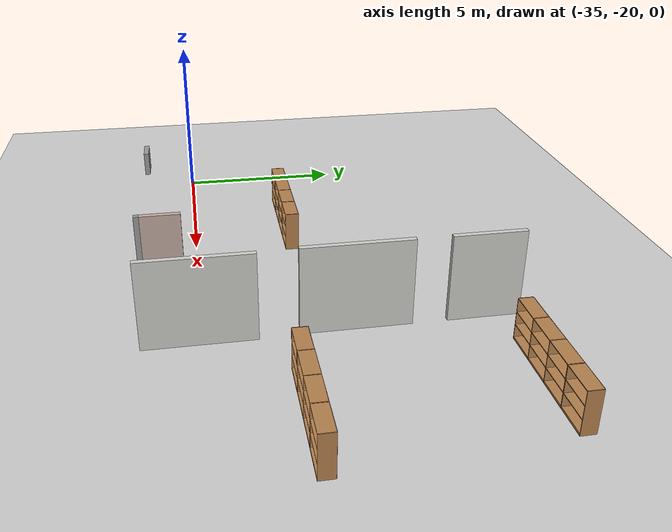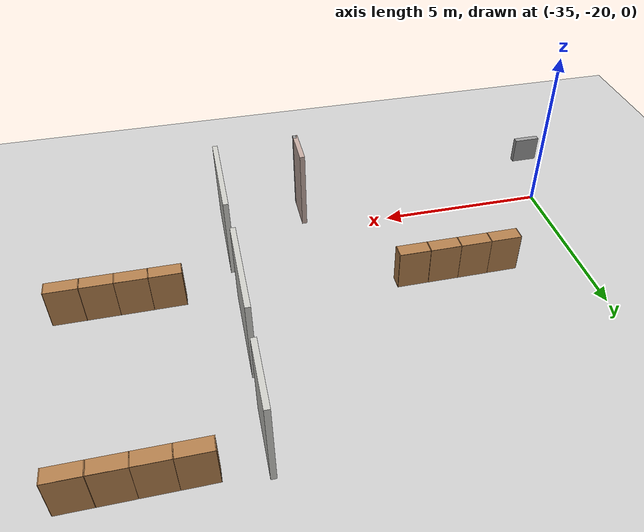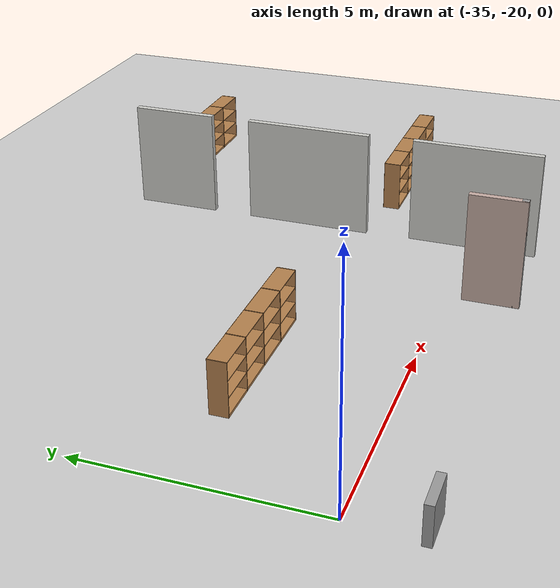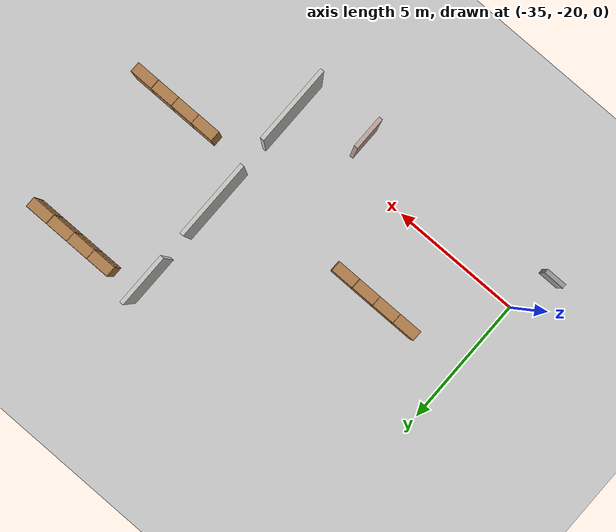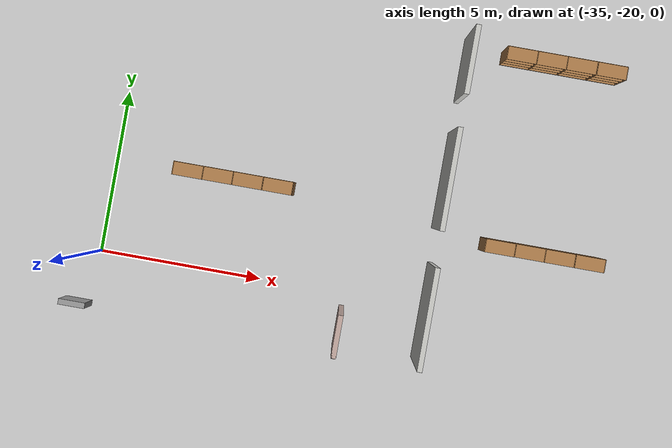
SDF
<sdf version="1.6">
 <world name="default">
  <model name="ground_plane">
   <static>1</static>
   <link name="link">
    <collision name="collision">
     <geometry><plane><normal>0 0 1</normal><size>100 100</size></plane></geometry>
     <surface><friction><ode><mu>100</mu><mu2>50</mu2></ode></friction></surface>
    </collision>
    <visual name="visual">
     <cast_shadows>0</cast_shadows>
     <geometry><plane><normal>0 0 1</normal><size>100 100</size></plane></geometry>
     <material>
      <script><uri>file://media/materials/scripts/gazebo.material</uri><name>Gazebo/Grey</name></script>
     </material>
    </visual>
   </link>
  </model>
  <model name="floor">
   <link name="Wall_27">
    <pose>-28.6403 -19.7123 0 0 0 -1.5708</pose>
    <visual name="Wall_27_Visual">
     <pose>0 0 1.25 0 -0 0</pose>
     <geometry><box><size>1.25 0.15 2.5</size></box></geometry>
     <material>
      <script><uri>file://media/materials/scripts/gazebo.material</uri><name>Gazebo/Grey</name></script>
      <ambient>0.760784 0.662745 0.627451 1</ambient>
     </material>
     <meta><layer>0</layer></meta>
    </visual>
    <collision name="Wall_27_Collision">
     <pose>0 0 1.25 0 -0 0</pose>
     <geometry><box><size>1.25 0.15 2.5</size></box></geometry>
     <surface>
      <friction>
       <ode><mu>1</mu><mu2>1</mu2><fdir1>0 0 0</fdir1><slip1>0</slip1><slip2>0</slip2></ode>
       <torsional>
        <coefficient>1</coefficient>
        <patch_radius>0</patch_radius>
        <surface_radius>0</surface_radius>
        <use_patch_radius>1</use_patch_radius>
        <ode><slip>0</slip></ode>
       </torsional>
      </friction>
      <bounce><restitution_coefficient>0</restitution_coefficient><threshold>1e+06</threshold></bounce>
      <contact>
       <collide_without_contact>0</collide_without_contact>
       <collide_without_contact_bitmask>1</collide_without_contact_bitmask>
       <collide_bitmask>1</collide_bitmask>
       <ode>
        <soft_cfm>0</soft_cfm>
        <soft_erp>0.2</soft_erp>
        <kp>1e+13</kp>
        <kd>1</kd>
        <max_vel>0.01</max_vel>
        <min_depth>0</min_depth>
       </ode>
       <bullet>
        <split_impulse>1</split_impulse>
        <split_impulse_penetration_threshold>-0.01</split_impulse_penetration_threshold>
        <soft_cfm>0</soft_cfm>
        <soft_erp>0.2</soft_erp>
        <kp>1e+13</kp>
        <kd>1</kd>
       </bullet>
      </contact>
     </surface>
    </collision>
   </link>
   <link name="Wall_28">
    <pose>-28.6403 -20.2623 0 0 -0 0</pose>
    <visual name="Wall_28_Visual">
     <pose>0 0 1.25 0 -0 0</pose>
     <geometry><box><size>0.15 0.15 2.5</size></box></geometry>
     <material>
      <script><uri>file://media/materials/scripts/gazebo.material</uri><name>Gazebo/Grey</name></script>
      <ambient>1 1 1 1</ambient>
     </material>
     <meta><layer>0</layer></meta>
    </visual>
    <collision name="Wall_28_Collision">
     <pose>0 0 1.25 0 -0 0</pose>
     <geometry><box><size>0.15 0.15 2.5</size></box></geometry>
     <surface>
      <friction>
       <ode><mu>1</mu><mu2>1</mu2><fdir1>0 0 0</fdir1><slip1>0</slip1><slip2>0</slip2></ode>
       <torsional>
        <coefficient>1</coefficient>
        <patch_radius>0</patch_radius>
        <surface_radius>0</surface_radius>
        <use_patch_radius>1</use_patch_radius>
        <ode><slip>0</slip></ode>
       </torsional>
      </friction>
      <bounce><restitution_coefficient>0</restitution_coefficient><threshold>1e+06</threshold></bounce>
      <contact>
       <collide_without_contact>0</collide_without_contact>
       <collide_without_contact_bitmask>1</collide_without_contact_bitmask>
       <collide_bitmask>1</collide_bitmask>
       <ode>
        <soft_cfm>0</soft_cfm>
        <soft_erp>0.2</soft_erp>
        <kp>1e+13</kp>
        <kd>1</kd>
        <max_vel>0.01</max_vel>
        <min_depth>0</min_depth>
       </ode>
       <bullet>
        <split_impulse>1</split_impulse>
        <split_impulse_penetration_threshold>-0.01</split_impulse_penetration_threshold>
        <soft_cfm>0</soft_cfm>
        <soft_erp>0.2</soft_erp>
        <kp>1e+13</kp>
        <kd>1</kd>
       </bullet>
      </contact>
     </surface>
    </collision>
   </link>
   <link name="Wall_51">
    <pose>-26.2339 -11.2873 0 0 0 -1.5708</pose>
    <visual name="Wall_51_Visual">
     <pose>0 0 1.25 0 -0 0</pose>
     <geometry><box><size>2 0.15 2.5</size></box></geometry>
     <material>
      <script><uri>file://media/materials/scripts/gazebo.material</uri><name>Gazebo/CeilingTiled</name></script>
      <ambient>0.760784 0.662745 0.627451 1</ambient>
     </material>
     <meta><layer>0</layer></meta>
    </visual>
    <collision name="Wall_51_Collision">
     <pose>0 0 1.25 0 -0 0</pose>
     <geometry><box><size>2 0.15 2.5</size></box></geometry>
     <surface>
      <friction>
       <ode><mu>1</mu><mu2>1</mu2><fdir1>0 0 0</fdir1><slip1>0</slip1><slip2>0</slip2></ode>
       <torsional>
        <coefficient>1</coefficient>
        <patch_radius>0</patch_radius>
        <surface_radius>0</surface_radius>
        <use_patch_radius>1</use_patch_radius>
        <ode><slip>0</slip></ode>
       </torsional>
      </friction>
      <bounce><restitution_coefficient>0</restitution_coefficient><threshold>1e+06</threshold></bounce>
      <contact>
       <collide_without_contact>0</collide_without_contact>
       <collide_without_contact_bitmask>1</collide_without_contact_bitmask>
       <collide_bitmask>1</collide_bitmask>
       <ode>
        <soft_cfm>0</soft_cfm>
        <soft_erp>0.2</soft_erp>
        <kp>1e+13</kp>
        <kd>1</kd>
        <max_vel>0.01</max_vel>
        <min_depth>0</min_depth>
       </ode>
       <bullet>
        <split_impulse>1</split_impulse>
        <split_impulse_penetration_threshold>-0.01</split_impulse_penetration_threshold>
        <soft_cfm>0</soft_cfm>
        <soft_erp>0.2</soft_erp>
        <kp>1e+13</kp>
        <kd>1</kd>
       </bullet>
      </contact>
     </surface>
    </collision>
   </link>
   <link name="Wall_53">
    <pose>-26.2339 -14.7373 0 0 0 -1.5708</pose>
    <visual name="Wall_53_Visual">
     <pose>0 0 1.25 0 -0 0</pose>
     <geometry><box><size>3 0.15 2.5</size></box></geometry>
     <material>
      <script><uri>file://media/materials/scripts/gazebo.material</uri><name>Gazebo/CeilingTiled</name></script>
      <ambient>0.760784 0.662745 0.627451 1</ambient>
     </material>
     <meta><layer>0</layer></meta>
    </visual>
    <collision name="Wall_53_Collision">
     <pose>0 0 1.25 0 -0 0</pose>
     <geometry><box><size>3 0.15 2.5</size></box></geometry>
     <surface>
      <friction>
       <ode><mu>1</mu><mu2>1</mu2><fdir1>0 0 0</fdir1><slip1>0</slip1><slip2>0</slip2></ode>
       <torsional>
        <coefficient>1</coefficient>
        <patch_radius>0</patch_radius>
        <surface_radius>0</surface_radius>
        <use_patch_radius>1</use_patch_radius>
        <ode><slip>0</slip></ode>
       </torsional>
      </friction>
      <bounce><restitution_coefficient>0</restitution_coefficient><threshold>1e+06</threshold></bounce>
      <contact>
       <collide_without_contact>0</collide_without_contact>
       <collide_without_contact_bitmask>1</collide_without_contact_bitmask>
       <collide_bitmask>1</collide_bitmask>
       <ode>
        <soft_cfm>0</soft_cfm>
        <soft_erp>0.2</soft_erp>
        <kp>1e+13</kp>
        <kd>1</kd>
        <max_vel>0.01</max_vel>
        <min_depth>0</min_depth>
       </ode>
       <bullet>
        <split_impulse>1</split_impulse>
        <split_impulse_penetration_threshold>-0.01</split_impulse_penetration_threshold>
        <soft_cfm>0</soft_cfm>
        <soft_erp>0.2</soft_erp>
        <kp>1e+13</kp>
        <kd>1</kd>
       </bullet>
      </contact>
     </surface>
    </collision>
   </link>
   <link name="Wall_56">
    <pose>-26.1672 -18.784 0 0 0 -1.5708</pose>
    <visual name="Wall_56_Visual">
     <pose>0 0 1.25 0 -0 0</pose>
     <geometry><box><size>3 0.15 2.5</size></box></geometry>
     <material>
      <script><uri>file://media/materials/scripts/gazebo.material</uri><name>Gazebo/CeilingTiled</name></script>
      <ambient>0.760784 0.662745 0.627451 1</ambient>
     </material>
     <meta><layer>0</layer></meta>
    </visual>
    <collision name="Wall_56_Collision">
     <pose>0 0 1.25 0 -0 0</pose>
     <geometry><box><size>3 0.15 2.5</size></box></geometry>
     <surface>
      <friction>
       <ode><mu>1</mu><mu2>1</mu2><fdir1>0 0 0</fdir1><slip1>0</slip1><slip2>0</slip2></ode>
       <torsional>
        <coefficient>1</coefficient>
        <patch_radius>0</patch_radius>
        <surface_radius>0</surface_radius>
        <use_patch_radius>1</use_patch_radius>
        <ode><slip>0</slip></ode>
       </torsional>
      </friction>
      <bounce><restitution_coefficient>0</restitution_coefficient><threshold>1e+06</threshold></bounce>
      <contact>
       <collide_without_contact>0</collide_without_contact>
       <collide_without_contact_bitmask>1</collide_without_contact_bitmask>
       <collide_bitmask>1</collide_bitmask>
       <ode>
        <soft_cfm>0</soft_cfm>
        <soft_erp>0.2</soft_erp>
        <kp>1e+13</kp>
        <kd>1</kd>
        <max_vel>0.01</max_vel>
        <min_depth>0</min_depth>
       </ode>
       <bullet>
        <split_impulse>1</split_impulse>
        <split_impulse_penetration_threshold>-0.01</split_impulse_penetration_threshold>
        <soft_cfm>0</soft_cfm>
        <soft_erp>0.2</soft_erp>
        <kp>1e+13</kp>
        <kd>1</kd>
       </bullet>
      </contact>
     </surface>
    </collision>
   </link>
   <link name="Window_0">
    <pose>-36.55 -20.3 0.5 0 -0 0</pose>
    <visual name="Window_0_Visual">
     <pose>0 0 0.4 0 -0 0</pose>
     <geometry><box><size>0.8 0.17 0.8</size></box></geometry>
     <material>
      <script><uri>file://media/materials/scripts/gazebo.material</uri><name>Gazebo/Grey</name></script>
     </material>
    </visual>
    <collision name="Window_0_Collision">
     <pose>0 0 0.4 0 -0 0</pose>
     <geometry><box><size>0.8 0.17 0.8</size></box></geometry>
     <surface>
      <friction>
       <ode><mu>1</mu><mu2>1</mu2><fdir1>0 0 0</fdir1><slip1>0</slip1><slip2>0</slip2></ode>
       <torsional>
        <coefficient>1</coefficient>
        <patch_radius>0</patch_radius>
        <surface_radius>0</surface_radius>
        <use_patch_radius>1</use_patch_radius>
        <ode><slip>0</slip></ode>
       </torsional>
      </friction>
      <bounce><restitution_coefficient>0</restitution_coefficient><threshold>1e+06</threshold></bounce>
      <contact>
       <collide_without_contact>0</collide_without_contact>
       <collide_without_contact_bitmask>1</collide_without_contact_bitmask>
       <collide_bitmask>1</collide_bitmask>
       <ode>
        <soft_cfm>0</soft_cfm>
        <soft_erp>0.2</soft_erp>
        <kp>1e+13</kp>
        <kd>1</kd>
        <max_vel>0.01</max_vel>
        <min_depth>0</min_depth>
       </ode>
       <bullet>
        <split_impulse>1</split_impulse>
        <split_impulse_penetration_threshold>-0.01</split_impulse_penetration_threshold>
        <soft_cfm>0</soft_cfm>
        <soft_erp>0.2</soft_erp>
        <kp>1e+13</kp>
        <kd>1</kd>
       </bullet>
      </contact>
     </surface>
    </collision>
   </link>
   <model name="Bookself-4">
    <model name="Bookself-3">
     <model name="bookshelf_0">
      <static>1</static>
      <link name="link">
       <inertial><mass>1</mass></inertial>
       <collision name="back">
        <pose>0 0.005 0.6 0 -0 0</pose>
        <geometry><box><size>0.9 0.01 1.2</size></box></geometry>
       </collision>
       <visual name="visual1">
        <pose>0 0.005 0.6 0 -0 0</pose>
        <geometry><box><size>0.9 0.01 1.2</size></box></geometry>
        <material>
         <script><uri>file://media/materials/scripts/gazebo.material</uri><name>Gazebo/Wood</name></script>
        </material>
       </visual>
       <collision name="left_side">
        <pose>0.45 -0.195 0.6 0 -0 0</pose>
        <geometry><box><size>0.02 0.4 1.2</size></box></geometry>
       </collision>
       <visual name="visual2">
        <pose>0.45 -0.195 0.6 0 -0 0</pose>
        <geometry><box><size>0.02 0.4 1.2</size></box></geometry>
        <material>
         <script><uri>file://media/materials/scripts/gazebo.material</uri><name>Gazebo/Wood</name></script>
        </material>
       </visual>
       <collision name="right_side">
        <pose>-0.45 -0.195 0.6 0 -0 0</pose>
        <geometry><box><size>0.02 0.4 1.2</size></box></geometry>
       </collision>
       <visual name="visual3">
        <pose>-0.45 -0.195 0.6 0 -0 0</pose>
        <geometry><box><size>0.02 0.4 1.2</size></box></geometry>
        <material>
         <script><uri>file://media/materials/scripts/gazebo.material</uri><name>Gazebo/Wood</name></script>
        </material>
       </visual>
       <collision name="bottom">
        <pose>0 -0.195 0.03 0 -0 0</pose>
        <geometry><box><size>0.88 0.4 0.06</size></box></geometry>
       </collision>
       <visual name="visual4">
        <pose>0 -0.195 0.03 0 -0 0</pose>
        <geometry><box><size>0.88 0.4 0.06</size></box></geometry>
        <material>
         <script><uri>file://media/materials/scripts/gazebo.material</uri><name>Gazebo/Wood</name></script>
        </material>
       </visual>
       <collision name="top">
        <pose>0 -0.195 1.19 0 -0 0</pose>
        <geometry><box><size>0.88 0.4 0.02</size></box></geometry>
       </collision>
       <visual name="visual5">
        <pose>0 -0.195 1.19 0 -0 0</pose>
        <geometry><box><size>0.88 0.4 0.02</size></box></geometry>
        <material>
         <script><uri>file://media/materials/scripts/gazebo.material</uri><name>Gazebo/Wood</name></script>
        </material>
       </visual>
       <collision name="low_shelf">
        <pose>0 -0.195 0.43 0 -0 0</pose>
        <geometry><box><size>0.88 0.4 0.02</size></box></geometry>
       </collision>
       <visual name="visual6">
        <pose>0 -0.195 0.43 0 -0 0</pose>
        <geometry><box><size>0.88 0.4 0.02</size></box></geometry>
        <material>
         <script><uri>file://media/materials/scripts/gazebo.material</uri><name>Gazebo/Wood</name></script>
        </material>
       </visual>
       <collision name="high_shelf">
        <pose>0 -0.195 0.8 0 -0 0</pose>
        <geometry><box><size>0.88 0.4 0.02</size></box></geometry>
       </collision>
       <visual name="visual7">
        <pose>0 -0.195 0.8 0 -0 0</pose>
        <geometry><box><size>0.88 0.4 0.02</size></box></geometry>
        <material>
         <script><uri>file://media/materials/scripts/gazebo.material</uri><name>Gazebo/Wood</name></script>
        </material>
       </visual>
      </link>
      <pose>-0.903039 0 0 0 -0 0</pose>
     </model>
     <model name="bookshelf_1">
      <static>1</static>
      <link name="link">
       <inertial><mass>1</mass></inertial>
       <collision name="back">
        <pose>0 0.005 0.6 0 -0 0</pose>
        <geometry><box><size>0.9 0.01 1.2</size></box></geometry>
       </collision>
       <visual name="visual1">
        <pose>0 0.005 0.6 0 -0 0</pose>
        <geometry><box><size>0.9 0.01 1.2</size></box></geometry>
        <material>
         <script><uri>file://media/materials/scripts/gazebo.material</uri><name>Gazebo/Wood</name></script>
        </material>
       </visual>
       <collision name="left_side">
        <pose>0.45 -0.195 0.6 0 -0 0</pose>
        <geometry><box><size>0.02 0.4 1.2</size></box></geometry>
       </collision>
       <visual name="visual2">
        <pose>0.45 -0.195 0.6 0 -0 0</pose>
        <geometry><box><size>0.02 0.4 1.2</size></box></geometry>
        <material>
         <script><uri>file://media/materials/scripts/gazebo.material</uri><name>Gazebo/Wood</name></script>
        </material>
       </visual>
       <collision name="right_side">
        <pose>-0.45 -0.195 0.6 0 -0 0</pose>
        <geometry><box><size>0.02 0.4 1.2</size></box></geometry>
       </collision>
       <visual name="visual3">
        <pose>-0.45 -0.195 0.6 0 -0 0</pose>
        <geometry><box><size>0.02 0.4 1.2</size></box></geometry>
        <material>
         <script><uri>file://media/materials/scripts/gazebo.material</uri><name>Gazebo/Wood</name></script>
        </material>
       </visual>
       <collision name="bottom">
        <pose>0 -0.195 0.03 0 -0 0</pose>
        <geometry><box><size>0.88 0.4 0.06</size></box></geometry>
       </collision>
       <visual name="visual4">
        <pose>0 -0.195 0.03 0 -0 0</pose>
        <geometry><box><size>0.88 0.4 0.06</size></box></geometry>
        <material>
         <script><uri>file://media/materials/scripts/gazebo.material</uri><name>Gazebo/Wood</name></script>
        </material>
       </visual>
       <collision name="top">
        <pose>0 -0.195 1.19 0 -0 0</pose>
        <geometry><box><size>0.88 0.4 0.02</size></box></geometry>
       </collision>
       <visual name="visual5">
        <pose>0 -0.195 1.19 0 -0 0</pose>
        <geometry><box><size>0.88 0.4 0.02</size></box></geometry>
        <material>
         <script><uri>file://media/materials/scripts/gazebo.material</uri><name>Gazebo/Wood</name></script>
        </material>
       </visual>
       <collision name="low_shelf">
        <pose>0 -0.195 0.43 0 -0 0</pose>
        <geometry><box><size>0.88 0.4 0.02</size></box></geometry>
       </collision>
       <visual name="visual6">
        <pose>0 -0.195 0.43 0 -0 0</pose>
        <geometry><box><size>0.88 0.4 0.02</size></box></geometry>
        <material>
         <script><uri>file://media/materials/scripts/gazebo.material</uri><name>Gazebo/Wood</name></script>
        </material>
       </visual>
       <collision name="high_shelf">
        <pose>0 -0.195 0.8 0 -0 0</pose>
        <geometry><box><size>0.88 0.4 0.02</size></box></geometry>
       </collision>
       <visual name="visual7">
        <pose>0 -0.195 0.8 0 -0 0</pose>
        <geometry><box><size>0.88 0.4 0.02</size></box></geometry>
        <material>
         <script><uri>file://media/materials/scripts/gazebo.material</uri><name>Gazebo/Wood</name></script>
        </material>
       </visual>
      </link>
      <pose>0.000535 0 0 0 -0 0</pose>
     </model>
     <model name="bookshelf_1_clone">
      <static>1</static>
      <link name="link">
       <inertial><mass>1</mass></inertial>
       <collision name="back">
        <pose>0 0.005 0.6 0 -0 0</pose>
        <geometry><box><size>0.9 0.01 1.2</size></box></geometry>
       </collision>
       <visual name="visual1">
        <pose>0 0.005 0.6 0 -0 0</pose>
        <geometry><box><size>0.9 0.01 1.2</size></box></geometry>
        <material>
         <script><uri>file://media/materials/scripts/gazebo.material</uri><name>Gazebo/Wood</name></script>
        </material>
       </visual>
       <collision name="left_side">
        <pose>0.45 -0.195 0.6 0 -0 0</pose>
        <geometry><box><size>0.02 0.4 1.2</size></box></geometry>
       </collision>
       <visual name="visual2">
        <pose>0.45 -0.195 0.6 0 -0 0</pose>
        <geometry><box><size>0.02 0.4 1.2</size></box></geometry>
        <material>
         <script><uri>file://media/materials/scripts/gazebo.material</uri><name>Gazebo/Wood</name></script>
        </material>
       </visual>
       <collision name="right_side">
        <pose>-0.45 -0.195 0.6 0 -0 0</pose>
        <geometry><box><size>0.02 0.4 1.2</size></box></geometry>
       </collision>
       <visual name="visual3">
        <pose>-0.45 -0.195 0.6 0 -0 0</pose>
        <geometry><box><size>0.02 0.4 1.2</size></box></geometry>
        <material>
         <script><uri>file://media/materials/scripts/gazebo.material</uri><name>Gazebo/Wood</name></script>
        </material>
       </visual>
       <collision name="bottom">
        <pose>0 -0.195 0.03 0 -0 0</pose>
        <geometry><box><size>0.88 0.4 0.06</size></box></geometry>
       </collision>
       <visual name="visual4">
        <pose>0 -0.195 0.03 0 -0 0</pose>
        <geometry><box><size>0.88 0.4 0.06</size></box></geometry>
        <material>
         <script><uri>file://media/materials/scripts/gazebo.material</uri><name>Gazebo/Wood</name></script>
        </material>
       </visual>
       <collision name="top">
        <pose>0 -0.195 1.19 0 -0 0</pose>
        <geometry><box><size>0.88 0.4 0.02</size></box></geometry>
       </collision>
       <visual name="visual5">
        <pose>0 -0.195 1.19 0 -0 0</pose>
        <geometry><box><size>0.88 0.4 0.02</size></box></geometry>
        <material>
         <script><uri>file://media/materials/scripts/gazebo.material</uri><name>Gazebo/Wood</name></script>
        </material>
       </visual>
       <collision name="low_shelf">
        <pose>0 -0.195 0.43 0 -0 0</pose>
        <geometry><box><size>0.88 0.4 0.02</size></box></geometry>
       </collision>
       <visual name="visual6">
        <pose>0 -0.195 0.43 0 -0 0</pose>
        <geometry><box><size>0.88 0.4 0.02</size></box></geometry>
        <material>
         <script><uri>file://media/materials/scripts/gazebo.material</uri><name>Gazebo/Wood</name></script>
        </material>
       </visual>
       <collision name="high_shelf">
        <pose>0 -0.195 0.8 0 -0 0</pose>
        <geometry><box><size>0.88 0.4 0.02</size></box></geometry>
       </collision>
       <visual name="visual7">
        <pose>0 -0.195 0.8 0 -0 0</pose>
        <geometry><box><size>0.88 0.4 0.02</size></box></geometry>
        <material>
         <script><uri>file://media/materials/scripts/gazebo.material</uri><name>Gazebo/Wood</name></script>
        </material>
       </visual>
      </link>
      <pose>0.902502 0 0 0 -0 0</pose>
     </model>
     <static>1</static>
     <pose>-0.906894 3e-05 0 0 -0 0</pose>
    </model>
    <model name="bookshelf">
     <static>1</static>
     <link name="link">
      <inertial><mass>1</mass></inertial>
      <collision name="back">
       <pose>0 0.005 0.6 0 -0 0</pose>
       <geometry><box><size>0.9 0.01 1.2</size></box></geometry>
      </collision>
      <visual name="visual1">
       <pose>0 0.005 0.6 0 -0 0</pose>
       <geometry><box><size>0.9 0.01 1.2</size></box></geometry>
       <material>
        <script><uri>file://media/materials/scripts/gazebo.material</uri><name>Gazebo/Wood</name></script>
       </material>
      </visual>
      <collision name="left_side">
       <pose>0.45 -0.195 0.6 0 -0 0</pose>
       <geometry><box><size>0.02 0.4 1.2</size></box></geometry>
      </collision>
      <visual name="visual2">
       <pose>0.45 -0.195 0.6 0 -0 0</pose>
       <geometry><box><size>0.02 0.4 1.2</size></box></geometry>
       <material>
        <script><uri>file://media/materials/scripts/gazebo.material</uri><name>Gazebo/Wood</name></script>
       </material>
      </visual>
      <collision name="right_side">
       <pose>-0.45 -0.195 0.6 0 -0 0</pose>
       <geometry><box><size>0.02 0.4 1.2</size></box></geometry>
      </collision>
      <visual name="visual3">
       <pose>-0.45 -0.195 0.6 0 -0 0</pose>
       <geometry><box><size>0.02 0.4 1.2</size></box></geometry>
       <material>
        <script><uri>file://media/materials/scripts/gazebo.material</uri><name>Gazebo/Wood</name></script>
       </material>
      </visual>
      <collision name="bottom">
       <pose>0 -0.195 0.03 0 -0 0</pose>
       <geometry><box><size>0.88 0.4 0.06</size></box></geometry>
      </collision>
      <visual name="visual4">
       <pose>0 -0.195 0.03 0 -0 0</pose>
       <geometry><box><size>0.88 0.4 0.06</size></box></geometry>
       <material>
        <script><uri>file://media/materials/scripts/gazebo.material</uri><name>Gazebo/Wood</name></script>
       </material>
      </visual>
      <collision name="top">
       <pose>0 -0.195 1.19 0 -0 0</pose>
       <geometry><box><size>0.88 0.4 0.02</size></box></geometry>
      </collision>
      <visual name="visual5">
       <pose>0 -0.195 1.19 0 -0 0</pose>
       <geometry><box><size>0.88 0.4 0.02</size></box></geometry>
       <material>
        <script><uri>file://media/materials/scripts/gazebo.material</uri><name>Gazebo/Wood</name></script>
       </material>
      </visual>
      <collision name="low_shelf">
       <pose>0 -0.195 0.43 0 -0 0</pose>
       <geometry><box><size>0.88 0.4 0.02</size></box></geometry>
      </collision>
      <visual name="visual6">
       <pose>0 -0.195 0.43 0 -0 0</pose>
       <geometry><box><size>0.88 0.4 0.02</size></box></geometry>
       <material>
        <script><uri>file://media/materials/scripts/gazebo.material</uri><name>Gazebo/Wood</name></script>
       </material>
      </visual>
      <collision name="high_shelf">
       <pose>0 -0.195 0.8 0 -0 0</pose>
       <geometry><box><size>0.88 0.4 0.02</size></box></geometry>
      </collision>
      <visual name="visual7">
       <pose>0 -0.195 0.8 0 -0 0</pose>
       <geometry><box><size>0.88 0.4 0.02</size></box></geometry>
       <material>
        <script><uri>file://media/materials/scripts/gazebo.material</uri><name>Gazebo/Wood</name></script>
       </material>
      </visual>
     </link>
     <pose>0.906808 3e-05 0 0 -0 0</pose>
    </model>
    <static>0</static>
    <pose>-22.8416 -10.4808 0 0 -0 0</pose>
   </model>
   <static>1</static>
   <pose>1.26361 -1.27025 0 0 -0 0</pose>
  </model>
  <model name="Bookshelf-4_clone_22">
   <model name="bookshelf">
    <static>1</static>
    <link name="link">
     <inertial><mass>1</mass></inertial>
     <collision name="back">
      <pose>0 0.005 0.6 0 -0 0</pose>
      <geometry><box><size>0.9 0.01 1.2</size></box></geometry>
     </collision>
     <visual name="visual1">
      <pose>0 0.005 0.6 0 -0 0</pose>
      <geometry><box><size>0.9 0.01 1.2</size></box></geometry>
      <material>
       <script><uri>file://media/materials/scripts/gazebo.material</uri><name>Gazebo/Wood</name></script>
      </material>
     </visual>
     <collision name="left_side">
      <pose>0.45 -0.195 0.6 0 -0 0</pose>
      <geometry><box><size>0.02 0.4 1.2</size></box></geometry>
     </collision>
     <visual name="visual2">
      <pose>0.45 -0.195 0.6 0 -0 0</pose>
      <geometry><box><size>0.02 0.4 1.2</size></box></geometry>
      <material>
       <script><uri>file://media/materials/scripts/gazebo.material</uri><name>Gazebo/Wood</name></script>
      </material>
     </visual>
     <collision name="right_side">
      <pose>-0.45 -0.195 0.6 0 -0 0</pose>
      <geometry><box><size>0.02 0.4 1.2</size></box></geometry>
     </collision>
     <visual name="visual3">
      <pose>-0.45 -0.195 0.6 0 -0 0</pose>
      <geometry><box><size>0.02 0.4 1.2</size></box></geometry>
      <material>
       <script><uri>file://media/materials/scripts/gazebo.material</uri><name>Gazebo/Wood</name></script>
      </material>
     </visual>
     <collision name="bottom">
      <pose>0 -0.195 0.03 0 -0 0</pose>
      <geometry><box><size>0.88 0.4 0.06</size></box></geometry>
     </collision>
     <visual name="visual4">
      <pose>0 -0.195 0.03 0 -0 0</pose>
      <geometry><box><size>0.88 0.4 0.06</size></box></geometry>
      <material>
       <script><uri>file://media/materials/scripts/gazebo.material</uri><name>Gazebo/Wood</name></script>
      </material>
     </visual>
     <collision name="top">
      <pose>0 -0.195 1.19 0 -0 0</pose>
      <geometry><box><size>0.88 0.4 0.02</size></box></geometry>
     </collision>
     <visual name="visual5">
      <pose>0 -0.195 1.19 0 -0 0</pose>
      <geometry><box><size>0.88 0.4 0.02</size></box></geometry>
      <material>
       <script><uri>file://media/materials/scripts/gazebo.material</uri><name>Gazebo/Wood</name></script>
      </material>
     </visual>
     <collision name="low_shelf">
      <pose>0 -0.195 0.43 0 -0 0</pose>
      <geometry><box><size>0.88 0.4 0.02</size></box></geometry>
     </collision>
     <visual name="visual6">
      <pose>0 -0.195 0.43 0 -0 0</pose>
      <geometry><box><size>0.88 0.4 0.02</size></box></geometry>
      <material>
       <script><uri>file://media/materials/scripts/gazebo.material</uri><name>Gazebo/Wood</name></script>
      </material>
     </visual>
     <collision name="high_shelf">
      <pose>0 -0.195 0.8 0 -0 0</pose>
      <geometry><box><size>0.88 0.4 0.02</size></box></geometry>
     </collision>
     <visual name="visual7">
      <pose>0 -0.195 0.8 0 -0 0</pose>
      <geometry><box><size>0.88 0.4 0.02</size></box></geometry>
      <material>
       <script><uri>file://media/materials/scripts/gazebo.material</uri><name>Gazebo/Wood</name></script>
      </material>
     </visual>
    </link>
    <pose>-1.35671 -0.002097 0 0 -0 0</pose>
   </model>
   <model name="bookshelf_0">
    <static>1</static>
    <link name="link">
     <inertial><mass>1</mass></inertial>
     <collision name="back">
      <pose>0 0.005 0.6 0 -0 0</pose>
      <geometry><box><size>0.9 0.01 1.2</size></box></geometry>
     </collision>
     <visual name="visual1">
      <pose>0 0.005 0.6 0 -0 0</pose>
      <geometry><box><size>0.9 0.01 1.2</size></box></geometry>
      <material>
       <script><uri>file://media/materials/scripts/gazebo.material</uri><name>Gazebo/Wood</name></script>
      </material>
     </visual>
     <collision name="left_side">
      <pose>0.45 -0.195 0.6 0 -0 0</pose>
      <geometry><box><size>0.02 0.4 1.2</size></box></geometry>
     </collision>
     <visual name="visual2">
      <pose>0.45 -0.195 0.6 0 -0 0</pose>
      <geometry><box><size>0.02 0.4 1.2</size></box></geometry>
      <material>
       <script><uri>file://media/materials/scripts/gazebo.material</uri><name>Gazebo/Wood</name></script>
      </material>
     </visual>
     <collision name="right_side">
      <pose>-0.45 -0.195 0.6 0 -0 0</pose>
      <geometry><box><size>0.02 0.4 1.2</size></box></geometry>
     </collision>
     <visual name="visual3">
      <pose>-0.45 -0.195 0.6 0 -0 0</pose>
      <geometry><box><size>0.02 0.4 1.2</size></box></geometry>
      <material>
       <script><uri>file://media/materials/scripts/gazebo.material</uri><name>Gazebo/Wood</name></script>
      </material>
     </visual>
     <collision name="bottom">
      <pose>0 -0.195 0.03 0 -0 0</pose>
      <geometry><box><size>0.88 0.4 0.06</size></box></geometry>
     </collision>
     <visual name="visual4">
      <pose>0 -0.195 0.03 0 -0 0</pose>
      <geometry><box><size>0.88 0.4 0.06</size></box></geometry>
      <material>
       <script><uri>file://media/materials/scripts/gazebo.material</uri><name>Gazebo/Wood</name></script>
      </material>
     </visual>
     <collision name="top">
      <pose>0 -0.195 1.19 0 -0 0</pose>
      <geometry><box><size>0.88 0.4 0.02</size></box></geometry>
     </collision>
     <visual name="visual5">
      <pose>0 -0.195 1.19 0 -0 0</pose>
      <geometry><box><size>0.88 0.4 0.02</size></box></geometry>
      <material>
       <script><uri>file://media/materials/scripts/gazebo.material</uri><name>Gazebo/Wood</name></script>
      </material>
     </visual>
     <collision name="low_shelf">
      <pose>0 -0.195 0.43 0 -0 0</pose>
      <geometry><box><size>0.88 0.4 0.02</size></box></geometry>
     </collision>
     <visual name="visual6">
      <pose>0 -0.195 0.43 0 -0 0</pose>
      <geometry><box><size>0.88 0.4 0.02</size></box></geometry>
      <material>
       <script><uri>file://media/materials/scripts/gazebo.material</uri><name>Gazebo/Wood</name></script>
      </material>
     </visual>
     <collision name="high_shelf">
      <pose>0 -0.195 0.8 0 -0 0</pose>
      <geometry><box><size>0.88 0.4 0.02</size></box></geometry>
     </collision>
     <visual name="visual7">
      <pose>0 -0.195 0.8 0 -0 0</pose>
      <geometry><box><size>0.88 0.4 0.02</size></box></geometry>
      <material>
       <script><uri>file://media/materials/scripts/gazebo.material</uri><name>Gazebo/Wood</name></script>
      </material>
     </visual>
    </link>
    <pose>-0.452974 0.001386 0 0 -0 0</pose>
   </model>
   <model name="bookshelf_1">
    <static>1</static>
    <link name="link">
     <inertial><mass>1</mass></inertial>
     <collision name="back">
      <pose>0 0.005 0.6 0 -0 0</pose>
      <geometry><box><size>0.9 0.01 1.2</size></box></geometry>
     </collision>
     <visual name="visual1">
      <pose>0 0.005 0.6 0 -0 0</pose>
      <geometry><box><size>0.9 0.01 1.2</size></box></geometry>
      <material>
       <script><uri>file://media/materials/scripts/gazebo.material</uri><name>Gazebo/Wood</name></script>
      </material>
     </visual>
     <collision name="left_side">
      <pose>0.45 -0.195 0.6 0 -0 0</pose>
      <geometry><box><size>0.02 0.4 1.2</size></box></geometry>
     </collision>
     <visual name="visual2">
      <pose>0.45 -0.195 0.6 0 -0 0</pose>
      <geometry><box><size>0.02 0.4 1.2</size></box></geometry>
      <material>
       <script><uri>file://media/materials/scripts/gazebo.material</uri><name>Gazebo/Wood</name></script>
      </material>
     </visual>
     <collision name="right_side">
      <pose>-0.45 -0.195 0.6 0 -0 0</pose>
      <geometry><box><size>0.02 0.4 1.2</size></box></geometry>
     </collision>
     <visual name="visual3">
      <pose>-0.45 -0.195 0.6 0 -0 0</pose>
      <geometry><box><size>0.02 0.4 1.2</size></box></geometry>
      <material>
       <script><uri>file://media/materials/scripts/gazebo.material</uri><name>Gazebo/Wood</name></script>
      </material>
     </visual>
     <collision name="bottom">
      <pose>0 -0.195 0.03 0 -0 0</pose>
      <geometry><box><size>0.88 0.4 0.06</size></box></geometry>
     </collision>
     <visual name="visual4">
      <pose>0 -0.195 0.03 0 -0 0</pose>
      <geometry><box><size>0.88 0.4 0.06</size></box></geometry>
      <material>
       <script><uri>file://media/materials/scripts/gazebo.material</uri><name>Gazebo/Wood</name></script>
      </material>
     </visual>
     <collision name="top">
      <pose>0 -0.195 1.19 0 -0 0</pose>
      <geometry><box><size>0.88 0.4 0.02</size></box></geometry>
     </collision>
     <visual name="visual5">
      <pose>0 -0.195 1.19 0 -0 0</pose>
      <geometry><box><size>0.88 0.4 0.02</size></box></geometry>
      <material>
       <script><uri>file://media/materials/scripts/gazebo.material</uri><name>Gazebo/Wood</name></script>
      </material>
     </visual>
     <collision name="low_shelf">
      <pose>0 -0.195 0.43 0 -0 0</pose>
      <geometry><box><size>0.88 0.4 0.02</size></box></geometry>
     </collision>
     <visual name="visual6">
      <pose>0 -0.195 0.43 0 -0 0</pose>
      <geometry><box><size>0.88 0.4 0.02</size></box></geometry>
      <material>
       <script><uri>file://media/materials/scripts/gazebo.material</uri><name>Gazebo/Wood</name></script>
      </material>
     </visual>
     <collision name="high_shelf">
      <pose>0 -0.195 0.8 0 -0 0</pose>
      <geometry><box><size>0.88 0.4 0.02</size></box></geometry>
     </collision>
     <visual name="visual7">
      <pose>0 -0.195 0.8 0 -0 0</pose>
      <geometry><box><size>0.88 0.4 0.02</size></box></geometry>
      <material>
       <script><uri>file://media/materials/scripts/gazebo.material</uri><name>Gazebo/Wood</name></script>
      </material>
     </visual>
    </link>
    <pose>0.450456 0.000733 0 0 -0 0</pose>
   </model>
   <model name="bookshelf_2">
    <static>1</static>
    <link name="link">
     <inertial><mass>1</mass></inertial>
     <collision name="back">
      <pose>0 0.005 0.6 0 -0 0</pose>
      <geometry><box><size>0.9 0.01 1.2</size></box></geometry>
     </collision>
     <visual name="visual1">
      <pose>0 0.005 0.6 0 -0 0</pose>
      <geometry><box><size>0.9 0.01 1.2</size></box></geometry>
      <material>
       <script><uri>file://media/materials/scripts/gazebo.material</uri><name>Gazebo/Wood</name></script>
      </material>
     </visual>
     <collision name="left_side">
      <pose>0.45 -0.195 0.6 0 -0 0</pose>
      <geometry><box><size>0.02 0.4 1.2</size></box></geometry>
     </collision>
     <visual name="visual2">
      <pose>0.45 -0.195 0.6 0 -0 0</pose>
      <geometry><box><size>0.02 0.4 1.2</size></box></geometry>
      <material>
       <script><uri>file://media/materials/scripts/gazebo.material</uri><name>Gazebo/Wood</name></script>
      </material>
     </visual>
     <collision name="right_side">
      <pose>-0.45 -0.195 0.6 0 -0 0</pose>
      <geometry><box><size>0.02 0.4 1.2</size></box></geometry>
     </collision>
     <visual name="visual3">
      <pose>-0.45 -0.195 0.6 0 -0 0</pose>
      <geometry><box><size>0.02 0.4 1.2</size></box></geometry>
      <material>
       <script><uri>file://media/materials/scripts/gazebo.material</uri><name>Gazebo/Wood</name></script>
      </material>
     </visual>
     <collision name="bottom">
      <pose>0 -0.195 0.03 0 -0 0</pose>
      <geometry><box><size>0.88 0.4 0.06</size></box></geometry>
     </collision>
     <visual name="visual4">
      <pose>0 -0.195 0.03 0 -0 0</pose>
      <geometry><box><size>0.88 0.4 0.06</size></box></geometry>
      <material>
       <script><uri>file://media/materials/scripts/gazebo.material</uri><name>Gazebo/Wood</name></script>
      </material>
     </visual>
     <collision name="top">
      <pose>0 -0.195 1.19 0 -0 0</pose>
      <geometry><box><size>0.88 0.4 0.02</size></box></geometry>
     </collision>
     <visual name="visual5">
      <pose>0 -0.195 1.19 0 -0 0</pose>
      <geometry><box><size>0.88 0.4 0.02</size></box></geometry>
      <material>
       <script><uri>file://media/materials/scripts/gazebo.material</uri><name>Gazebo/Wood</name></script>
      </material>
     </visual>
     <collision name="low_shelf">
      <pose>0 -0.195 0.43 0 -0 0</pose>
      <geometry><box><size>0.88 0.4 0.02</size></box></geometry>
     </collision>
     <visual name="visual6">
      <pose>0 -0.195 0.43 0 -0 0</pose>
      <geometry><box><size>0.88 0.4 0.02</size></box></geometry>
      <material>
       <script><uri>file://media/materials/scripts/gazebo.material</uri><name>Gazebo/Wood</name></script>
      </material>
     </visual>
     <collision name="high_shelf">
      <pose>0 -0.195 0.8 0 -0 0</pose>
      <geometry><box><size>0.88 0.4 0.02</size></box></geometry>
     </collision>
     <visual name="visual7">
      <pose>0 -0.195 0.8 0 -0 0</pose>
      <geometry><box><size>0.88 0.4 0.02</size></box></geometry>
      <material>
       <script><uri>file://media/materials/scripts/gazebo.material</uri><name>Gazebo/Wood</name></script>
      </material>
     </visual>
    </link>
    <pose>1.35922 -1.7e-05 0 0 -0 0</pose>
   </model>
   <static>0</static>
   <pose>-31.2412 -16.8739 0 0 -0 0</pose>
  </model>
  <model name="Bookshelf-4_clone_23">
   <model name="bookshelf">
    <static>1</static>
    <link name="link">
     <inertial><mass>1</mass></inertial>
     <collision name="back">
      <pose>0 0.005 0.6 0 -0 0</pose>
      <geometry><box><size>0.9 0.01 1.2</size></box></geometry>
     </collision>
     <visual name="visual1">
      <pose>0 0.005 0.6 0 -0 0</pose>
      <geometry><box><size>0.9 0.01 1.2</size></box></geometry>
      <material>
       <script><uri>file://media/materials/scripts/gazebo.material</uri><name>Gazebo/Wood</name></script>
      </material>
     </visual>
     <collision name="left_side">
      <pose>0.45 -0.195 0.6 0 -0 0</pose>
      <geometry><box><size>0.02 0.4 1.2</size></box></geometry>
     </collision>
     <visual name="visual2">
      <pose>0.45 -0.195 0.6 0 -0 0</pose>
      <geometry><box><size>0.02 0.4 1.2</size></box></geometry>
      <material>
       <script><uri>file://media/materials/scripts/gazebo.material</uri><name>Gazebo/Wood</name></script>
      </material>
     </visual>
     <collision name="right_side">
      <pose>-0.45 -0.195 0.6 0 -0 0</pose>
      <geometry><box><size>0.02 0.4 1.2</size></box></geometry>
     </collision>
     <visual name="visual3">
      <pose>-0.45 -0.195 0.6 0 -0 0</pose>
      <geometry><box><size>0.02 0.4 1.2</size></box></geometry>
      <material>
       <script><uri>file://media/materials/scripts/gazebo.material</uri><name>Gazebo/Wood</name></script>
      </material>
     </visual>
     <collision name="bottom">
      <pose>0 -0.195 0.03 0 -0 0</pose>
      <geometry><box><size>0.88 0.4 0.06</size></box></geometry>
     </collision>
     <visual name="visual4">
      <pose>0 -0.195 0.03 0 -0 0</pose>
      <geometry><box><size>0.88 0.4 0.06</size></box></geometry>
      <material>
       <script><uri>file://media/materials/scripts/gazebo.material</uri><name>Gazebo/Wood</name></script>
      </material>
     </visual>
     <collision name="top">
      <pose>0 -0.195 1.19 0 -0 0</pose>
      <geometry><box><size>0.88 0.4 0.02</size></box></geometry>
     </collision>
     <visual name="visual5">
      <pose>0 -0.195 1.19 0 -0 0</pose>
      <geometry><box><size>0.88 0.4 0.02</size></box></geometry>
      <material>
       <script><uri>file://media/materials/scripts/gazebo.material</uri><name>Gazebo/Wood</name></script>
      </material>
     </visual>
     <collision name="low_shelf">
      <pose>0 -0.195 0.43 0 -0 0</pose>
      <geometry><box><size>0.88 0.4 0.02</size></box></geometry>
     </collision>
     <visual name="visual6">
      <pose>0 -0.195 0.43 0 -0 0</pose>
      <geometry><box><size>0.88 0.4 0.02</size></box></geometry>
      <material>
       <script><uri>file://media/materials/scripts/gazebo.material</uri><name>Gazebo/Wood</name></script>
      </material>
     </visual>
     <collision name="high_shelf">
      <pose>0 -0.195 0.8 0 -0 0</pose>
      <geometry><box><size>0.88 0.4 0.02</size></box></geometry>
     </collision>
     <visual name="visual7">
      <pose>0 -0.195 0.8 0 -0 0</pose>
      <geometry><box><size>0.88 0.4 0.02</size></box></geometry>
      <material>
       <script><uri>file://media/materials/scripts/gazebo.material</uri><name>Gazebo/Wood</name></script>
      </material>
     </visual>
    </link>
    <pose>-1.35671 -0.002097 0 0 -0 0</pose>
   </model>
   <model name="bookshelf_0">
    <static>1</static>
    <link name="link">
     <inertial><mass>1</mass></inertial>
     <collision name="back">
      <pose>0 0.005 0.6 0 -0 0</pose>
      <geometry><box><size>0.9 0.01 1.2</size></box></geometry>
     </collision>
     <visual name="visual1">
      <pose>0 0.005 0.6 0 -0 0</pose>
      <geometry><box><size>0.9 0.01 1.2</size></box></geometry>
      <material>
       <script><uri>file://media/materials/scripts/gazebo.material</uri><name>Gazebo/Wood</name></script>
      </material>
     </visual>
     <collision name="left_side">
      <pose>0.45 -0.195 0.6 0 -0 0</pose>
      <geometry><box><size>0.02 0.4 1.2</size></box></geometry>
     </collision>
     <visual name="visual2">
      <pose>0.45 -0.195 0.6 0 -0 0</pose>
      <geometry><box><size>0.02 0.4 1.2</size></box></geometry>
      <material>
       <script><uri>file://media/materials/scripts/gazebo.material</uri><name>Gazebo/Wood</name></script>
      </material>
     </visual>
     <collision name="right_side">
      <pose>-0.45 -0.195 0.6 0 -0 0</pose>
      <geometry><box><size>0.02 0.4 1.2</size></box></geometry>
     </collision>
     <visual name="visual3">
      <pose>-0.45 -0.195 0.6 0 -0 0</pose>
      <geometry><box><size>0.02 0.4 1.2</size></box></geometry>
      <material>
       <script><uri>file://media/materials/scripts/gazebo.material</uri><name>Gazebo/Wood</name></script>
      </material>
     </visual>
     <collision name="bottom">
      <pose>0 -0.195 0.03 0 -0 0</pose>
      <geometry><box><size>0.88 0.4 0.06</size></box></geometry>
     </collision>
     <visual name="visual4">
      <pose>0 -0.195 0.03 0 -0 0</pose>
      <geometry><box><size>0.88 0.4 0.06</size></box></geometry>
      <material>
       <script><uri>file://media/materials/scripts/gazebo.material</uri><name>Gazebo/Wood</name></script>
      </material>
     </visual>
     <collision name="top">
      <pose>0 -0.195 1.19 0 -0 0</pose>
      <geometry><box><size>0.88 0.4 0.02</size></box></geometry>
     </collision>
     <visual name="visual5">
      <pose>0 -0.195 1.19 0 -0 0</pose>
      <geometry><box><size>0.88 0.4 0.02</size></box></geometry>
      <material>
       <script><uri>file://media/materials/scripts/gazebo.material</uri><name>Gazebo/Wood</name></script>
      </material>
     </visual>
     <collision name="low_shelf">
      <pose>0 -0.195 0.43 0 -0 0</pose>
      <geometry><box><size>0.88 0.4 0.02</size></box></geometry>
     </collision>
     <visual name="visual6">
      <pose>0 -0.195 0.43 0 -0 0</pose>
      <geometry><box><size>0.88 0.4 0.02</size></box></geometry>
      <material>
       <script><uri>file://media/materials/scripts/gazebo.material</uri><name>Gazebo/Wood</name></script>
      </material>
     </visual>
     <collision name="high_shelf">
      <pose>0 -0.195 0.8 0 -0 0</pose>
      <geometry><box><size>0.88 0.4 0.02</size></box></geometry>
     </collision>
     <visual name="visual7">
      <pose>0 -0.195 0.8 0 -0 0</pose>
      <geometry><box><size>0.88 0.4 0.02</size></box></geometry>
      <material>
       <script><uri>file://media/materials/scripts/gazebo.material</uri><name>Gazebo/Wood</name></script>
      </material>
     </visual>
    </link>
    <pose>-0.452974 0.001386 0 0 -0 0</pose>
   </model>
   <model name="bookshelf_1">
    <static>1</static>
    <link name="link">
     <inertial><mass>1</mass></inertial>
     <collision name="back">
      <pose>0 0.005 0.6 0 -0 0</pose>
      <geometry><box><size>0.9 0.01 1.2</size></box></geometry>
     </collision>
     <visual name="visual1">
      <pose>0 0.005 0.6 0 -0 0</pose>
      <geometry><box><size>0.9 0.01 1.2</size></box></geometry>
      <material>
       <script><uri>file://media/materials/scripts/gazebo.material</uri><name>Gazebo/Wood</name></script>
      </material>
     </visual>
     <collision name="left_side">
      <pose>0.45 -0.195 0.6 0 -0 0</pose>
      <geometry><box><size>0.02 0.4 1.2</size></box></geometry>
     </collision>
     <visual name="visual2">
      <pose>0.45 -0.195 0.6 0 -0 0</pose>
      <geometry><box><size>0.02 0.4 1.2</size></box></geometry>
      <material>
       <script><uri>file://media/materials/scripts/gazebo.material</uri><name>Gazebo/Wood</name></script>
      </material>
     </visual>
     <collision name="right_side">
      <pose>-0.45 -0.195 0.6 0 -0 0</pose>
      <geometry><box><size>0.02 0.4 1.2</size></box></geometry>
     </collision>
     <visual name="visual3">
      <pose>-0.45 -0.195 0.6 0 -0 0</pose>
      <geometry><box><size>0.02 0.4 1.2</size></box></geometry>
      <material>
       <script><uri>file://media/materials/scripts/gazebo.material</uri><name>Gazebo/Wood</name></script>
      </material>
     </visual>
     <collision name="bottom">
      <pose>0 -0.195 0.03 0 -0 0</pose>
      <geometry><box><size>0.88 0.4 0.06</size></box></geometry>
     </collision>
     <visual name="visual4">
      <pose>0 -0.195 0.03 0 -0 0</pose>
      <geometry><box><size>0.88 0.4 0.06</size></box></geometry>
      <material>
       <script><uri>file://media/materials/scripts/gazebo.material</uri><name>Gazebo/Wood</name></script>
      </material>
     </visual>
     <collision name="top">
      <pose>0 -0.195 1.19 0 -0 0</pose>
      <geometry><box><size>0.88 0.4 0.02</size></box></geometry>
     </collision>
     <visual name="visual5">
      <pose>0 -0.195 1.19 0 -0 0</pose>
      <geometry><box><size>0.88 0.4 0.02</size></box></geometry>
      <material>
       <script><uri>file://media/materials/scripts/gazebo.material</uri><name>Gazebo/Wood</name></script>
      </material>
     </visual>
     <collision name="low_shelf">
      <pose>0 -0.195 0.43 0 -0 0</pose>
      <geometry><box><size>0.88 0.4 0.02</size></box></geometry>
     </collision>
     <visual name="visual6">
      <pose>0 -0.195 0.43 0 -0 0</pose>
      <geometry><box><size>0.88 0.4 0.02</size></box></geometry>
      <material>
       <script><uri>file://media/materials/scripts/gazebo.material</uri><name>Gazebo/Wood</name></script>
      </material>
     </visual>
     <collision name="high_shelf">
      <pose>0 -0.195 0.8 0 -0 0</pose>
      <geometry><box><size>0.88 0.4 0.02</size></box></geometry>
     </collision>
     <visual name="visual7">
      <pose>0 -0.195 0.8 0 -0 0</pose>
      <geometry><box><size>0.88 0.4 0.02</size></box></geometry>
      <material>
       <script><uri>file://media/materials/scripts/gazebo.material</uri><name>Gazebo/Wood</name></script>
      </material>
     </visual>
    </link>
    <pose>0.450456 0.000733 0 0 -0 0</pose>
   </model>
   <model name="bookshelf_2">
    <static>1</static>
    <link name="link">
     <inertial><mass>1</mass></inertial>
     <collision name="back">
      <pose>0 0.005 0.6 0 -0 0</pose>
      <geometry><box><size>0.9 0.01 1.2</size></box></geometry>
     </collision>
     <visual name="visual1">
      <pose>0 0.005 0.6 0 -0 0</pose>
      <geometry><box><size>0.9 0.01 1.2</size></box></geometry>
      <material>
       <script><uri>file://media/materials/scripts/gazebo.material</uri><name>Gazebo/Wood</name></script>
      </material>
     </visual>
     <collision name="left_side">
      <pose>0.45 -0.195 0.6 0 -0 0</pose>
      <geometry><box><size>0.02 0.4 1.2</size></box></geometry>
     </collision>
     <visual name="visual2">
      <pose>0.45 -0.195 0.6 0 -0 0</pose>
      <geometry><box><size>0.02 0.4 1.2</size></box></geometry>
      <material>
       <script><uri>file://media/materials/scripts/gazebo.material</uri><name>Gazebo/Wood</name></script>
      </material>
     </visual>
     <collision name="right_side">
      <pose>-0.45 -0.195 0.6 0 -0 0</pose>
      <geometry><box><size>0.02 0.4 1.2</size></box></geometry>
     </collision>
     <visual name="visual3">
      <pose>-0.45 -0.195 0.6 0 -0 0</pose>
      <geometry><box><size>0.02 0.4 1.2</size></box></geometry>
      <material>
       <script><uri>file://media/materials/scripts/gazebo.material</uri><name>Gazebo/Wood</name></script>
      </material>
     </visual>
     <collision name="bottom">
      <pose>0 -0.195 0.03 0 -0 0</pose>
      <geometry><box><size>0.88 0.4 0.06</size></box></geometry>
     </collision>
     <visual name="visual4">
      <pose>0 -0.195 0.03 0 -0 0</pose>
      <geometry><box><size>0.88 0.4 0.06</size></box></geometry>
      <material>
       <script><uri>file://media/materials/scripts/gazebo.material</uri><name>Gazebo/Wood</name></script>
      </material>
     </visual>
     <collision name="top">
      <pose>0 -0.195 1.19 0 -0 0</pose>
      <geometry><box><size>0.88 0.4 0.02</size></box></geometry>
     </collision>
     <visual name="visual5">
      <pose>0 -0.195 1.19 0 -0 0</pose>
      <geometry><box><size>0.88 0.4 0.02</size></box></geometry>
      <material>
       <script><uri>file://media/materials/scripts/gazebo.material</uri><name>Gazebo/Wood</name></script>
      </material>
     </visual>
     <collision name="low_shelf">
      <pose>0 -0.195 0.43 0 -0 0</pose>
      <geometry><box><size>0.88 0.4 0.02</size></box></geometry>
     </collision>
     <visual name="visual6">
      <pose>0 -0.195 0.43 0 -0 0</pose>
      <geometry><box><size>0.88 0.4 0.02</size></box></geometry>
      <material>
       <script><uri>file://media/materials/scripts/gazebo.material</uri><name>Gazebo/Wood</name></script>
      </material>
     </visual>
     <collision name="high_shelf">
      <pose>0 -0.195 0.8 0 -0 0</pose>
      <geometry><box><size>0.88 0.4 0.02</size></box></geometry>
     </collision>
     <visual name="visual7">
      <pose>0 -0.195 0.8 0 -0 0</pose>
      <geometry><box><size>0.88 0.4 0.02</size></box></geometry>
      <material>
       <script><uri>file://media/materials/scripts/gazebo.material</uri><name>Gazebo/Wood</name></script>
      </material>
     </visual>
    </link>
    <pose>1.35922 -1.7e-05 0 0 -0 0</pose>
   </model>
   <static>0</static>
   <pose>-21.6759 -17.5146 0 0 -0 0</pose>
  </model>
 </world>
</sdf>
